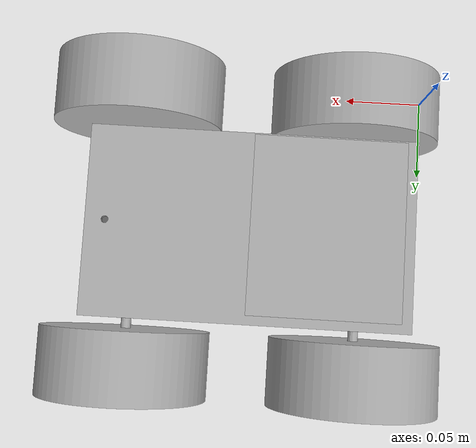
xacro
<?xml version="1.0" ?>
<robot name="ros_robot" xmlns:xacro="http://www.ros.org/wiki/xacro">

<xacro:include filename="$(find ros_robot_description)/urdf/materials.xacro" />
<xacro:include filename="$(find ros_robot_description)/urdf/ros_robot.trans" />
<xacro:include filename="$(find ros_robot_description)/urdf/ros_robot.gazebo" />
<link name="base_link">
  <inertial>
    <origin rpy="0 0 0" xyz="0.1158388397613685 0.10109007722221264 0.05032988922468174"/>
    <mass value="1.2049572619011009"/>
    <inertia ixx="0.002389" ixy="5.9e-05" ixz="-2e-06" iyy="0.005092" iyz="2e-06" izz="0.006572"/>
  </inertial>
  <visual>
    <origin rpy="0 0 0" xyz="0 0 0"/>
    <geometry>
      <mesh filename="package://ros_robot_description/meshes/base_link.stl" scale="0.001 0.001 0.001"/>
    </geometry>
    <material name="silver"/>
  </visual>
  <collision>
    <origin rpy="0 0 0" xyz="0 0 0"/>
    <geometry>
      <mesh filename="package://ros_robot_description/meshes/base_link.stl" scale="0.001 0.001 0.001"/>
    </geometry>
  </collision>
</link>

<link name="top_plate_1">
  <inertial>
    <origin rpy="0 0 0" xyz="0.11575137352044365 0.048604813248326516 0.09148906722549498"/>
    <mass value="0.4447990619720318"/>
    <inertia ixx="0.000409" ixy="-0.0" ixz="0.0" iyy="0.0012" iyz="0.0" izz="0.001609"/>
  </inertial>
  <visual>
    <origin rpy="0 0 0" xyz="-0.0 -0.0525 -0.0"/>
    <geometry>
      <mesh filename="package://ros_robot_description/meshes/top_plate_1.stl" scale="0.001 0.001 0.001"/>
    </geometry>
    <material name="silver"/>
  </visual>
  <collision>
    <origin rpy="0 0 0" xyz="-0.0 -0.0525 -0.0"/>
    <geometry>
      <mesh filename="package://ros_robot_description/meshes/top_plate_1.stl" scale="0.001 0.001 0.001"/>
    </geometry>
  </collision>
</link>

<link name="wheel_rear_left_1">
  <inertial>
    <origin rpy="0 0 0" xyz="0.1858039345670089 -0.019395186751674044 0.05498906722549458"/>
    <mass value="2.4569736880507413"/>
    <inertia ixx="0.001869" ixy="-0.0" ixz="0.0" iyy="0.003083" iyz="-0.0" izz="0.001869"/>
  </inertial>
  <visual>
    <origin rpy="0 0 0" xyz="-0.0 -0.04 -0.0"/>
    <geometry>
      <mesh filename="package://ros_robot_description/meshes/wheel_rear_left_1.stl" scale="0.001 0.001 0.001"/>
    </geometry>
    <material name="silver"/>
  </visual>
  <collision>
    <origin rpy="0 0 0" xyz="-0.0 -0.04 -0.0"/>
    <geometry>
      <mesh filename="package://ros_robot_description/meshes/wheel_rear_left_1.stl" scale="0.001 0.001 0.001"/>
    </geometry>
  </collision>
</link>

<link name="kinect_1">
  <inertial>
    <origin rpy="0 0 0" xyz="0.03605493456701083 0.06835581324832721 0.10360039458001304"/>
    <mass value="0.9942712642270771"/>
    <inertia ixx="0.000665" ixy="-0.0" ixz="0.0" iyy="0.000479" iyz="-0.0" izz="0.001077"/>
  </inertial>
  <visual>
    <origin rpy="0 0 0" xyz="-0.039749 -0.032749 0.0"/>
    <geometry>
      <mesh filename="package://ros_robot_description/meshes/kinect_1.stl" scale="0.001 0.001 0.001"/>
    </geometry>
    <material name="silver"/>
  </visual>
  <collision>
    <origin rpy="0 0 0" xyz="-0.039749 -0.032749 0.0"/>
    <geometry>
      <mesh filename="package://ros_robot_description/meshes/kinect_1.stl" scale="0.001 0.001 0.001"/>
    </geometry>
  </collision>
</link>

<link name="motor_right_1">
  <inertial>
    <origin rpy="0 0 0" xyz="0.18580393456701955 0.16772635147626097 0.04984029245709425"/>
    <mass value="0.5120118768661088"/>
    <inertia ixx="0.000373" ixy="-0.0" ixz="0.0" iyy="6.5e-05" iyz="4e-06" izz="0.000372"/>
  </inertial>
  <visual>
    <origin rpy="0 0 0" xyz="-0.0 0.0603 -0.006"/>
    <geometry>
      <mesh filename="package://ros_robot_description/meshes/motor_right_1.stl" scale="0.001 0.001 0.001"/>
    </geometry>
    <material name="silver"/>
  </visual>
  <collision>
    <origin rpy="0 0 0" xyz="-0.0 0.0603 -0.006"/>
    <geometry>
      <mesh filename="package://ros_robot_description/meshes/motor_right_1.stl" scale="0.001 0.001 0.001"/>
    </geometry>
  </collision>
</link>

<link name="motor_left_1">
  <inertial>
    <origin rpy="0 0 0" xyz="0.05665515979861051 0.15508327502039337 0.04398906722550343"/>
    <mass value="0.512011876866109"/>
    <inertia ixx="0.000372" ixy="-4e-06" ixz="0.0" iyy="6.5e-05" iyz="0.0" izz="0.000373"/>
  </inertial>
  <visual>
    <origin rpy="0 0 0" xyz="-0.0 0.0603 -0.006"/>
    <geometry>
      <mesh filename="package://ros_robot_description/meshes/motor_left_1.stl" scale="0.001 0.001 0.001"/>
    </geometry>
    <material name="silver"/>
  </visual>
  <collision>
    <origin rpy="0 0 0" xyz="-0.0 0.0603 -0.006"/>
    <geometry>
      <mesh filename="package://ros_robot_description/meshes/motor_left_1.stl" scale="0.001 0.001 0.001"/>
    </geometry>
  </collision>
</link>

<link name="wheel_front_left_1">
  <inertial>
    <origin rpy="0 0 0" xyz="0.05580393456700972 -0.018395186751673665 0.04998906722549404"/>
    <mass value="2.4569736880507413"/>
    <inertia ixx="0.001869" ixy="-0.0" ixz="0.0" iyy="0.003083" iyz="-0.0" izz="0.001869"/>
  </inertial>
  <visual>
    <origin rpy="0 0 0" xyz="-0.0 -0.04 -0.0"/>
    <geometry>
      <mesh filename="package://ros_robot_description/meshes/wheel_front_left_1.stl" scale="0.001 0.001 0.001"/>
    </geometry>
    <material name="silver"/>
  </visual>
  <collision>
    <origin rpy="0 0 0" xyz="-0.0 -0.04 -0.0"/>
    <geometry>
      <mesh filename="package://ros_robot_description/meshes/wheel_front_left_1.stl" scale="0.001 0.001 0.001"/>
    </geometry>
  </collision>
</link>

<link name="wheel_rear_right_1">
  <inertial>
    <origin rpy="0 0 0" xyz="0.18580393456700908 0.18060481324832814 0.04998906722549435"/>
    <mass value="2.4569736880507413"/>
    <inertia ixx="0.001869" ixy="0.0" ixz="0.0" iyy="0.003083" iyz="0.0" izz="0.001869"/>
  </inertial>
  <visual>
    <origin rpy="0 0 0" xyz="-0.0 -0.0 -0.0"/>
    <geometry>
      <mesh filename="package://ros_robot_description/meshes/wheel_rear_right_1.stl" scale="0.001 0.001 0.001"/>
    </geometry>
    <material name="silver"/>
  </visual>
  <collision>
    <origin rpy="0 0 0" xyz="-0.0 -0.0 -0.0"/>
    <geometry>
      <mesh filename="package://ros_robot_description/meshes/wheel_rear_right_1.stl" scale="0.001 0.001 0.001"/>
    </geometry>
  </collision>
</link>

<link name="wheel_front_right_1">
  <inertial>
    <origin rpy="0 0 0" xyz="0.0508039345670098 0.1806048132483284 0.04998906722549405"/>
    <mass value="2.4569736880507413"/>
    <inertia ixx="0.001869" ixy="-0.0" ixz="0.0" iyy="0.003083" iyz="0.0" izz="0.001869"/>
  </inertial>
  <visual>
    <origin rpy="0 0 0" xyz="-0.0 -0.0 0.0"/>
    <geometry>
      <mesh filename="package://ros_robot_description/meshes/wheel_front_right_1.stl" scale="0.001 0.001 0.001"/>
    </geometry>
    <material name="silver"/>
  </visual>
  <collision>
    <origin rpy="0 0 0" xyz="-0.0 -0.0 0.0"/>
    <geometry>
      <mesh filename="package://ros_robot_description/meshes/wheel_front_right_1.stl" scale="0.001 0.001 0.001"/>
    </geometry>
  </collision>
</link>

<joint name="Rigid3" type="fixed">
  <origin rpy="0 0 0" xyz="0.0 0.0525 0.0"/>
  <parent link="base_link"/>
  <child link="top_plate_1"/>
</joint>

<joint name="Rev5" type="continuous">
  <origin rpy="0 0 0" xyz="0.0 0.04 0.0"/>
  <parent link="base_link"/>
  <child link="wheel_rear_left_1"/>
  <axis xyz="0.0 -1.0 0.0"/>
</joint>

<joint name="Rigid8" type="fixed">
  <origin rpy="0 0 0" xyz="0.039749 -0.019751 -0.0"/>
  <parent link="top_plate_1"/>
  <child link="kinect_1"/>
</joint>

<joint name="Rigid9" type="fixed">
  <origin rpy="0 0 0" xyz="0.0 -0.0603 0.006"/>
  <parent link="base_link"/>
  <child link="motor_right_1"/>
</joint>

<joint name="Rigid10" type="fixed">
  <origin rpy="0 0 0" xyz="0.0 -0.0603 0.006"/>
  <parent link="base_link"/>
  <child link="motor_left_1"/>
</joint>

<joint name="Rev11" type="continuous">
  <origin rpy="0 0 0" xyz="0.0 0.1003 -0.006"/>
  <parent link="motor_left_1"/>
  <child link="wheel_front_left_1"/>
  <axis xyz="0.0 -1.0 0.0"/>
</joint>

<joint name="Rev12" type="continuous">
  <origin rpy="0 0 0" xyz="0.0 0.0603 -0.006"/>
  <parent link="motor_right_1"/>
  <child link="wheel_rear_right_1"/>
  <axis xyz="-0.0 1.0 -0.0"/>
</joint>

<joint name="Rigid14" type="fixed">
  <origin rpy="0 0 0" xyz="0.0 0.0 0.0"/>
  <parent link="base_link"/>
  <child link="wheel_front_right_1"/>
</joint>

</robot>

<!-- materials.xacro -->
<robot name="ros_robot" xmlns:xacro="http://www.ros.org/wiki/xacro" >

<material name="silver">
  <color rgba="0.700 0.700 0.700 1.000"/>
</material>

</robot>

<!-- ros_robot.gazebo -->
<robot name="ros_robot" xmlns:xacro="http://www.ros.org/wiki/xacro" >

<xacro:property name="body_color" value="Gazebo/Silver" />

<gazebo>
  <plugin filename="libgazebo_ros_control.so" name="control"/>
</gazebo>
<gazebo reference="base_link">
  <material>${body_color}</material>
  <mu1>0.2</mu1>
  <mu2>0.2</mu2>
  <selfCollide>true</selfCollide>
  <gravity>true</gravity>
</gazebo>

<gazebo reference="top_plate_1">
  <material>${body_color}</material>
  <mu1>0.2</mu1>
  <mu2>0.2</mu2>
  <selfCollide>true</selfCollide>
</gazebo>

<gazebo reference="wheel_rear_left_1">
  <material>${body_color}</material>
  <mu1>0.2</mu1>
  <mu2>0.2</mu2>
  <selfCollide>true</selfCollide>
</gazebo>

<gazebo reference="kinect_1">
  <material>${body_color}</material>
  <mu1>0.2</mu1>
  <mu2>0.2</mu2>
  <selfCollide>true</selfCollide>
</gazebo>

<gazebo reference="motor_right_1">
  <material>${body_color}</material>
  <mu1>0.2</mu1>
  <mu2>0.2</mu2>
  <selfCollide>true</selfCollide>
</gazebo>

<gazebo reference="motor_left_1">
  <material>${body_color}</material>
  <mu1>0.2</mu1>
  <mu2>0.2</mu2>
  <selfCollide>true</selfCollide>
</gazebo>

<gazebo reference="wheel_front_left_1">
  <material>${body_color}</material>
  <mu1>0.2</mu1>
  <mu2>0.2</mu2>
  <selfCollide>true</selfCollide>
</gazebo>

<gazebo reference="wheel_rear_right_1">
  <material>${body_color}</material>
  <mu1>0.2</mu1>
  <mu2>0.2</mu2>
  <selfCollide>true</selfCollide>
</gazebo>

<gazebo reference="wheel_front_right_1">
  <material>${body_color}</material>
  <mu1>0.2</mu1>
  <mu2>0.2</mu2>
  <selfCollide>true</selfCollide>
</gazebo>

</robot>
